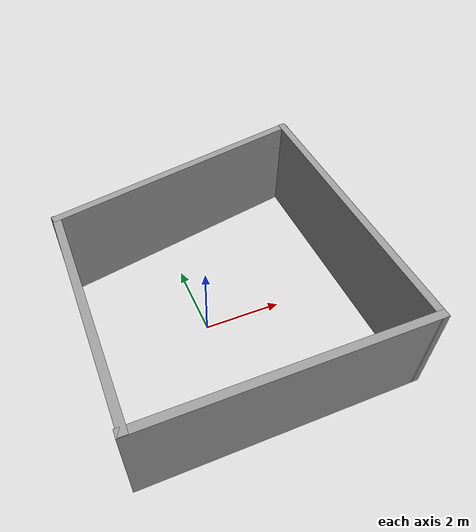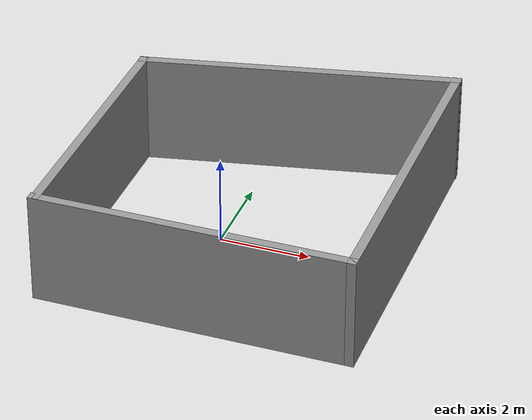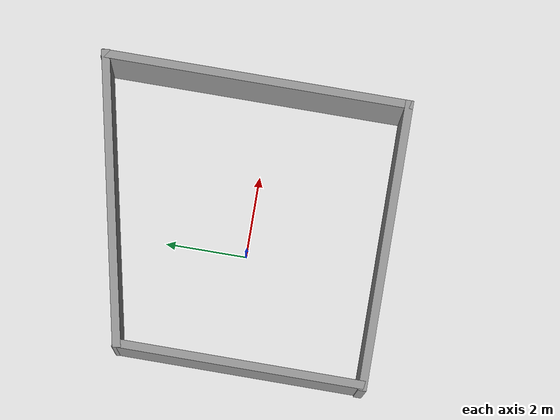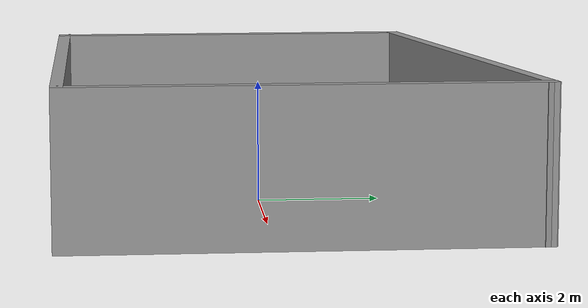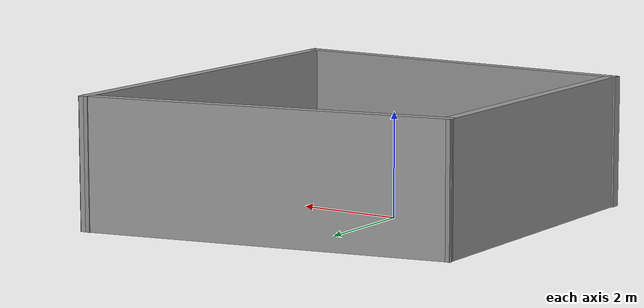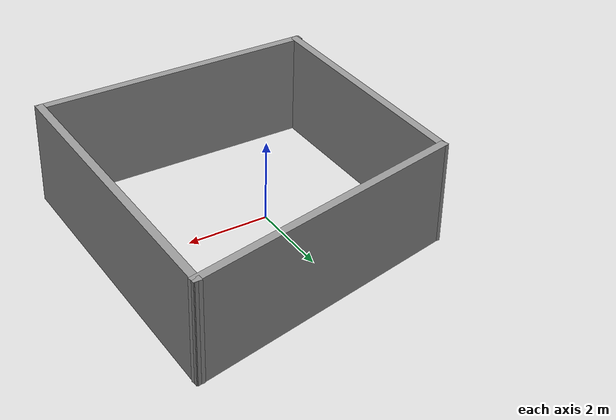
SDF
<?xml version='1.0'?>
<sdf version='1.4'>
  <model name='room'>
    <link name='Wall_0'>
      <collision name='Wall_0_Collision'>
        <geometry>
          <box>
            <size>7.01 0.2 2.5</size>
          </box>
        </geometry>
        <pose>0 0 1.25 0 -0 0</pose>
      </collision>
      <visual name='Wall_0_Visual'>
        <pose>0 0 1.25 0 -0 0</pose>
        <geometry>
          <box>
            <size>7.01 0.2 2.5</size>
          </box>
        </geometry>
        <material>
          <script>
            <uri>file://media/materials/scripts/gazebo.material</uri>
            <name>Gazebo/Grey</name>
          </script>
        </material>
      </visual>
      <velocity_decay>
        <linear>0</linear>
        <angular>0</angular>
      </velocity_decay>
      <pose>0.575 -3.24 0 0 -0 0</pose>
    </link>
    <link name='Wall_1'>
      <collision name='Wall_1_Collision'>
        <geometry>
          <box>
            <size>7.54 0.2 2.5</size>
          </box>
        </geometry>
        <pose>0 0 1.25 0 -0 0</pose>
      </collision>
      <visual name='Wall_1_Visual'>
        <pose>0 0 1.25 0 -0 0</pose>
        <geometry>
          <box>
            <size>7.54 0.2 2.5</size>
          </box>
        </geometry>
        <material>
          <script>
            <uri>file://media/materials/scripts/gazebo.material</uri>
            <name>Gazebo/Grey</name>
          </script>
        </material>
      </visual>
      <velocity_decay>
        <linear>0</linear>
        <angular>0</angular>
      </velocity_decay>
      <pose>3.98 0.43 0 0 -0 1.5708</pose>
    </link>
    <link name='Wall_2'>
      <collision name='Wall_2_Collision'>
        <geometry>
          <box>
            <size>7.1305 0.2 2.5</size>
          </box>
        </geometry>
        <pose>0 0 1.25 0 -0 0</pose>
      </collision>
      <visual name='Wall_2_Visual'>
        <pose>0 0 1.25 0 -0 0</pose>
        <geometry>
          <box>
            <size>7.1305 0.2 2.5</size>
          </box>
        </geometry>
        <material>
          <script>
            <uri>file://media/materials/scripts/gazebo.material</uri>
            <name>Gazebo/Grey</name>
          </script>
        </material>
      </visual>
      <velocity_decay>
        <linear>0</linear>
        <angular>0</angular>
      </velocity_decay>
      <pose>0.592609 3.36957 0 0 0 -2.92921</pose>
    </link>
    <link name='Wall_3'>
      <collision name='Wall_3_Collision'>
        <geometry>
          <box>
            <size>6.06956 0.2 2.5</size>
          </box>
        </geometry>
        <pose>0 0 1.25 0 -0 0</pose>
      </collision>
      <visual name='Wall_3_Visual'>
        <pose>0 0 1.25 0 -0 0</pose>
        <geometry>
          <box>
            <size>6.06956 0.2 2.5</size>
          </box>
        </geometry>
        <material>
          <script>
            <uri>file://media/materials/scripts/gazebo.material</uri>
            <name>Gazebo/Grey</name>
          </script>
        </material>
      </visual>
      <velocity_decay>
        <linear>0</linear>
        <angular>0</angular>
      </velocity_decay>
      <pose>-2.79478 -0.295652 0 0 0 -1.5708</pose>
    </link>
    <static>1</static>
  </model>
</sdf>
